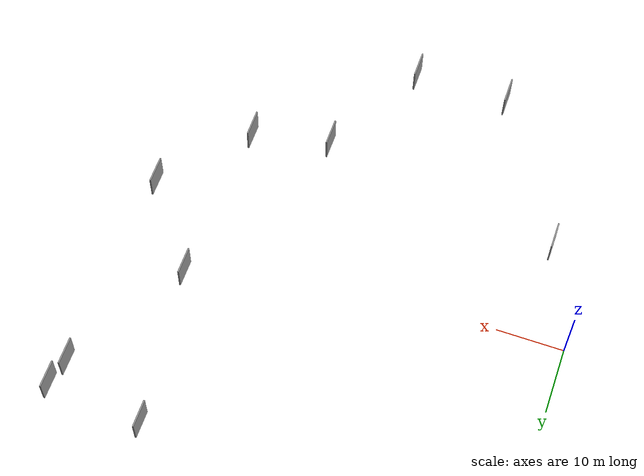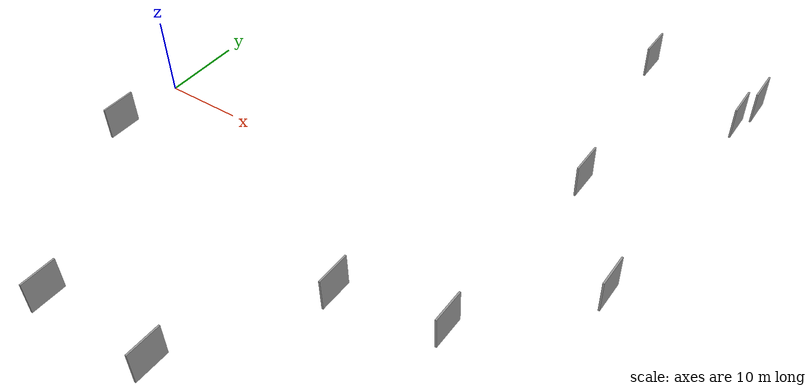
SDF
<sdf version="1.6">
 <world name="default">
  <scene>
   <sky><clouds><speed>12</speed></clouds></sky>
   <ambient>0.4 0.4 0.4 1</ambient>
   <background>0.7 0.7 0.7 1</background>
   <shadows>1</shadows>
  </scene>
  <gravity>0 0 -9.8066</gravity>
  <magnetic_field>6e-06 2.3e-05 -4.2e-05</magnetic_field>
  <physics default="0" name="default_physics" type="ode">
   <ode>
    <solver>
     <type>quick</type>
     <iters>10</iters>
     <sor>1.0</sor>
     <use_dynamic_moi_rescaling>0</use_dynamic_moi_rescaling>
    </solver>
    <constraints>
     <cfm>0</cfm>
     <erp>0.2</erp>
     <contact_max_correcting_vel>100</contact_max_correcting_vel>
     <contact_surface_layer>0.001</contact_surface_layer>
    </constraints>
   </ode>
   <max_step_size>0.004</max_step_size>
   <real_time_factor>1</real_time_factor>
   <real_time_update_rate>250</real_time_update_rate>
  </physics>
  <light name="sun" type="directional">
   <pose>0 0 10 0 0 0</pose>
   <diffuse>0.8 0.8 0.8 1</diffuse>
   <specular>0.2 0.2 0.2 1</specular>
   <attenuation>
    <range>1000</range>
    <constant>0.9</constant>
    <linear>0.01</linear>
    <quadratic>0.001</quadratic>
   </attenuation>
   <direction>-0.5 0.1 -0.9</direction>
  </light>
  <model name="grey_wall_1">
   <static>1</static>
   <pose>41.6220 -18.4961 5.0 0.000000 0.000000 1.570796</pose>
   <link name="link">
    <pose>0 0 2.00 0 0 0</pose>
    <collision name="collision"><geometry><box><size>4.00 0.2 4.00</size></box></geometry></collision>
    <visual name="visual">
     <cast_shadows>0</cast_shadows>
     <geometry><box><size>4.00 0.2 4.00</size></box></geometry>
     <material>
      <script>
       <uri>model://grey_wall/materials/scripts</uri>
       <uri>model://grey_wall/materials/textures</uri>
       <name>vrc/grey_wall</name>
      </script>
     </material>
    </visual>
   </link>
  </model>
  <model name="grey_wall_2">
   <static>1</static>
   <pose>64.3800 26.9318 5.0 0.000000 0.000000 1.570796</pose>
   <link name="link">
    <pose>0 0 2.00 0 0 0</pose>
    <collision name="collision"><geometry><box><size>4.00 0.2 4.00</size></box></geometry></collision>
    <visual name="visual">
     <cast_shadows>0</cast_shadows>
     <geometry><box><size>4.00 0.2 4.00</size></box></geometry>
     <material>
      <script>
       <uri>model://grey_wall/materials/scripts</uri>
       <uri>model://grey_wall/materials/textures</uri>
       <name>vrc/grey_wall</name>
      </script>
     </material>
    </visual>
   </link>
  </model>
  <model name="grey_wall_3">
   <static>1</static>
   <pose>65.3317 30.9119 5.0 0.000000 0.000000 1.570796</pose>
   <link name="link">
    <pose>0 0 2.00 0 0 0</pose>
    <collision name="collision"><geometry><box><size>4.00 0.2 4.00</size></box></geometry></collision>
    <visual name="visual">
     <cast_shadows>0</cast_shadows>
     <geometry><box><size>4.00 0.2 4.00</size></box></geometry>
     <material>
      <script>
       <uri>model://grey_wall/materials/scripts</uri>
       <uri>model://grey_wall/materials/textures</uri>
       <name>vrc/grey_wall</name>
      </script>
     </material>
    </visual>
   </link>
  </model>
  <model name="grey_wall_4">
   <static>1</static>
   <pose>54.2253 8.6323 5.0 0.000000 0.000000 1.570796</pose>
   <link name="link">
    <pose>0 0 2.00 0 0 0</pose>
    <collision name="collision"><geometry><box><size>4.00 0.2 4.00</size></box></geometry></collision>
    <visual name="visual">
     <cast_shadows>0</cast_shadows>
     <geometry><box><size>4.00 0.2 4.00</size></box></geometry>
     <material>
      <script>
       <uri>model://grey_wall/materials/scripts</uri>
       <uri>model://grey_wall/materials/textures</uri>
       <name>vrc/grey_wall</name>
      </script>
     </material>
    </visual>
   </link>
  </model>
  <model name="grey_wall_5">
   <static>1</static>
   <pose>53.0940 -16.1441 5.0 0.000000 0.000000 1.570796</pose>
   <link name="link">
    <pose>0 0 2.00 0 0 0</pose>
    <collision name="collision"><geometry><box><size>4.00 0.2 4.00</size></box></geometry></collision>
    <visual name="visual">
     <cast_shadows>0</cast_shadows>
     <geometry><box><size>4.00 0.2 4.00</size></box></geometry>
     <material>
      <script>
       <uri>model://grey_wall/materials/scripts</uri>
       <uri>model://grey_wall/materials/textures</uri>
       <name>vrc/grey_wall</name>
      </script>
     </material>
    </visual>
   </link>
  </model>
  <model name="grey_wall_6">
   <static>1</static>
   <pose>51.3245 32.1168 5.0 0.000000 0.000000 1.570796</pose>
   <link name="link">
    <pose>0 0 2.00 0 0 0</pose>
    <collision name="collision"><geometry><box><size>4.00 0.2 4.00</size></box></geometry></collision>
    <visual name="visual">
     <cast_shadows>0</cast_shadows>
     <geometry><box><size>4.00 0.2 4.00</size></box></geometry>
     <material>
      <script>
       <uri>model://grey_wall/materials/scripts</uri>
       <uri>model://grey_wall/materials/textures</uri>
       <name>vrc/grey_wall</name>
      </script>
     </material>
    </visual>
   </link>
  </model>
  <model name="grey_wall_7">
   <static>1</static>
   <pose>5.9526 -12.6009 5.0 0.000000 0.000000 1.570796</pose>
   <link name="link">
    <pose>0 0 2.00 0 0 0</pose>
    <collision name="collision"><geometry><box><size>4.00 0.2 4.00</size></box></geometry></collision>
    <visual name="visual">
     <cast_shadows>0</cast_shadows>
     <geometry><box><size>4.00 0.2 4.00</size></box></geometry>
     <material>
      <script>
       <uri>model://grey_wall/materials/scripts</uri>
       <uri>model://grey_wall/materials/textures</uri>
       <name>vrc/grey_wall</name>
      </script>
     </material>
    </visual>
   </link>
  </model>
  <model name="grey_wall_8">
   <static>1</static>
   <pose>18.9728 -34.3446 5.0 0.000000 0.000000 1.570796</pose>
   <link name="link">
    <pose>0 0 2.00 0 0 0</pose>
    <collision name="collision"><geometry><box><size>4.00 0.2 4.00</size></box></geometry></collision>
    <visual name="visual">
     <cast_shadows>0</cast_shadows>
     <geometry><box><size>4.00 0.2 4.00</size></box></geometry>
     <material>
      <script>
       <uri>model://grey_wall/materials/scripts</uri>
       <uri>model://grey_wall/materials/textures</uri>
       <name>vrc/grey_wall</name>
      </script>
     </material>
    </visual>
   </link>
  </model>
  <model name="grey_wall_9">
   <static>1</static>
   <pose>33.0446 -34.3490 5.0 0.000000 0.000000 1.570796</pose>
   <link name="link">
    <pose>0 0 2.00 0 0 0</pose>
    <collision name="collision"><geometry><box><size>4.00 0.2 4.00</size></box></geometry></collision>
    <visual name="visual">
     <cast_shadows>0</cast_shadows>
     <geometry><box><size>4.00 0.2 4.00</size></box></geometry>
     <material>
      <script>
       <uri>model://grey_wall/materials/scripts</uri>
       <uri>model://grey_wall/materials/textures</uri>
       <name>vrc/grey_wall</name>
      </script>
     </material>
    </visual>
   </link>
  </model>
  <model name="grey_wall_10">
   <static>1</static>
   <pose>63.5705 -3.9140 5.0 0.000000 0.000000 1.570796</pose>
   <link name="link">
    <pose>0 0 2.00 0 0 0</pose>
    <collision name="collision"><geometry><box><size>4.00 0.2 4.00</size></box></geometry></collision>
    <visual name="visual">
     <cast_shadows>0</cast_shadows>
     <geometry><box><size>4.00 0.2 4.00</size></box></geometry>
     <material>
      <script>
       <uri>model://grey_wall/materials/scripts</uri>
       <uri>model://grey_wall/materials/textures</uri>
       <name>vrc/grey_wall</name>
      </script>
     </material>
    </visual>
   </link>
  </model>
 </world>
</sdf>
